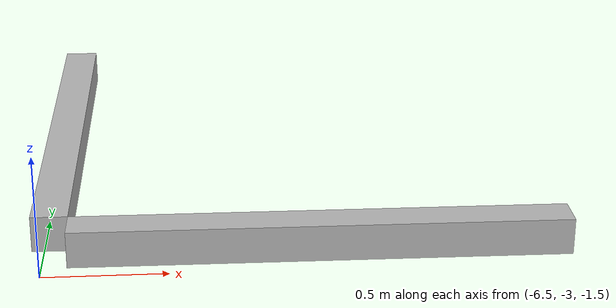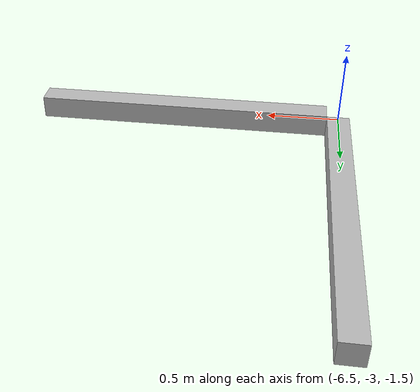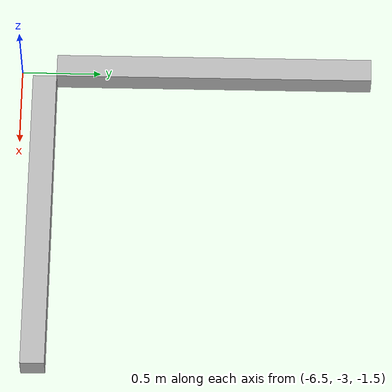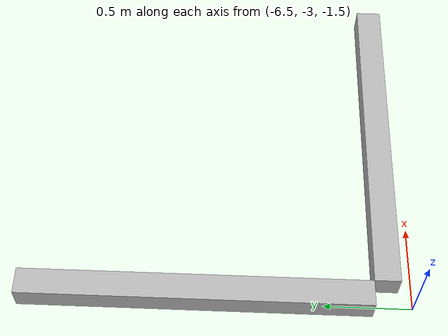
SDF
<sdf version="1.7">
 <world name="default">
  <model name="orthogonal_747_2.000.15_TS">
   <static>1</static>
   <link name="x_link_0_1_0">
    <inertial>
     <mass>1</mass>
     <inertia>
      <ixx>0.166667</ixx>
      <ixy>0</ixy>
      <ixz>0</ixz>
      <iyy>0.166667</iyy>
      <iyz>0</iyz>
      <izz>0.166667</izz>
     </inertia>
    </inertial>
    <pose>1.075 2.15 1.075 0 -0 0</pose>
    <visual name="visual_0">
     <laser_retro>162</laser_retro>
     <geometry><box><size>2 1e-06 0.15</size></box></geometry>
     <material>
      <script><name>Gazebo/Grey</name><uri>file://media/materials/scripts/gazebo.material</uri></script>
      <shader type="pixel"><normal_map>__default__</normal_map></shader>
      <ambient>0.678 0.498 0.659 1</ambient>
      <diffuse>0.7 0.7 0.7 1</diffuse>
      <specular>0.01 0.01 0.01 1</specular>
      <emissive>0 0 0 1</emissive>
     </material>
     <pose>0 -0.075 0 0 -0 0</pose>
     <transparency>1</transparency>
    </visual>
    <visual name="visual_1">
     <laser_retro>163</laser_retro>
     <geometry><box><size>2 1e-06 0.15</size></box></geometry>
     <material>
      <script><name>Gazebo/Grey</name><uri>file://media/materials/scripts/gazebo.material</uri></script>
      <shader type="pixel"><normal_map>__default__</normal_map></shader>
      <ambient>0.447 0.624 0.812 1</ambient>
      <diffuse>0.7 0.7 0.7 1</diffuse>
      <specular>0.01 0.01 0.01 1</specular>
      <emissive>0 0 0 1</emissive>
     </material>
     <pose>0 0.075 0 0 -0 0</pose>
     <transparency>1</transparency>
    </visual>
    <visual name="visual_2">
     <laser_retro>164</laser_retro>
     <geometry><box><size>2 0.15 1e-06</size></box></geometry>
     <material>
      <script><name>Gazebo/Grey</name><uri>file://media/materials/scripts/gazebo.material</uri></script>
      <shader type="pixel"><normal_map>__default__</normal_map></shader>
      <ambient>0.988 0.686 0.243 1</ambient>
      <diffuse>0.7 0.7 0.7 1</diffuse>
      <specular>0.01 0.01 0.01 1</specular>
      <emissive>0 0 0 1</emissive>
     </material>
     <pose>0 0 -0.075 0 -0 0</pose>
     <transparency>1</transparency>
    </visual>
    <visual name="visual_3">
     <laser_retro>165</laser_retro>
     <geometry><box><size>1e-06 0.15 0.15</size></box></geometry>
     <material>
      <script><name>Gazebo/Grey</name><uri>file://media/materials/scripts/gazebo.material</uri></script>
      <shader type="pixel"><normal_map>__default__</normal_map></shader>
      <ambient>0.988 0.914 0.31 1</ambient>
      <diffuse>0.7 0.7 0.7 1</diffuse>
      <specular>0.01 0.01 0.01 1</specular>
      <emissive>0 0 0 1</emissive>
     </material>
     <pose>1 0 0 0 -0 0</pose>
     <transparency>1</transparency>
    </visual>
    <visual name="visual_4">
     <laser_retro>166</laser_retro>
     <geometry><box><size>2 0.15 1e-06</size></box></geometry>
     <material>
      <script><name>Gazebo/Grey</name><uri>file://media/materials/scripts/gazebo.material</uri></script>
      <shader type="pixel"><normal_map>__default__</normal_map></shader>
      <ambient>0.937 0.161 0.161 1</ambient>
      <diffuse>0.7 0.7 0.7 1</diffuse>
      <specular>0.01 0.01 0.01 1</specular>
      <emissive>0 0 0 1</emissive>
     </material>
     <pose>0 0 0.075 0 -0 0</pose>
     <transparency>1</transparency>
    </visual>
    <visual name="visual_5">
     <laser_retro>167</laser_retro>
     <geometry><box><size>1e-06 0.15 0.15</size></box></geometry>
     <material>
      <script><name>Gazebo/Grey</name><uri>file://media/materials/scripts/gazebo.material</uri></script>
      <shader type="pixel"><normal_map>__default__</normal_map></shader>
      <ambient>0.541 0.886 0.204 1</ambient>
      <diffuse>0.7 0.7 0.7 1</diffuse>
      <specular>0.01 0.01 0.01 1</specular>
      <emissive>0 0 0 1</emissive>
     </material>
     <pose>-1 0 0 0 -0 0</pose>
     <transparency>1</transparency>
    </visual>
    <visual name="visual_texture">
     <geometry><box><size>1.9998 0.149985 0.149985</size></box></geometry>
     <material>
      <script>
       <uri>model://BASE_MODELS/simple_block_v2_textured/materials/scripts</uri>
       <uri>model://BASE_MODELS/simple_block_v2_textured/materials/textures</uri>
       <name>metal</name>
      </script>
     </material>
     <laser_retro>168</laser_retro>
    </visual>
    <collision name="collision">
     <geometry><box><size>2 0.15 0.15</size></box></geometry>
     <surface>
      <friction>
       <ode><mu>1</mu><mu2>1</mu2><fdir1>0 0 0</fdir1><slip1>0</slip1><slip2>0</slip2></ode>
       <torsional>
        <coefficient>1</coefficient>
        <patch_radius>0</patch_radius>
        <surface_radius>0</surface_radius>
        <use_patch_radius>1</use_patch_radius>
        <ode><slip>0</slip></ode>
       </torsional>
      </friction>
      <bounce><restitution_coefficient>0</restitution_coefficient><threshold>1e+06</threshold></bounce>
      <contact>
       <collide_without_contact>0</collide_without_contact>
       <collide_without_contact_bitmask>1</collide_without_contact_bitmask>
       <collide_bitmask>1</collide_bitmask>
       <ode>
        <soft_cfm>0</soft_cfm>
        <soft_erp>0.2</soft_erp>
        <kp>1e+13</kp>
        <kd>1</kd>
        <max_vel>0.01</max_vel>
        <min_depth>0</min_depth>
       </ode>
       <bullet>
        <split_impulse>1</split_impulse>
        <split_impulse_penetration_threshold>-0.01</split_impulse_penetration_threshold>
        <soft_cfm>0</soft_cfm>
        <soft_erp>0.2</soft_erp>
        <kp>1e+13</kp>
        <kd>1</kd>
       </bullet>
      </contact>
     </surface>
    </collision>
   </link>
   <link name="y_link_0_1_0">
    <inertial>
     <mass>1</mass>
     <inertia>
      <ixx>0.166667</ixx>
      <ixy>0</ixy>
      <ixz>0</ixz>
      <iyy>0.166667</iyy>
      <iyz>0</iyz>
      <izz>0.166667</izz>
     </inertia>
    </inertial>
    <pose>0 3.225 1.075 0 -0 0</pose>
    <visual name="visual_0">
     <laser_retro>169</laser_retro>
     <geometry><box><size>0.15 1e-06 0.15</size></box></geometry>
     <material>
      <script><name>Gazebo/Grey</name><uri>file://media/materials/scripts/gazebo.material</uri></script>
      <shader type="pixel"><normal_map>__default__</normal_map></shader>
      <ambient>0.678 0.498 0.659 1</ambient>
      <diffuse>0.7 0.7 0.7 1</diffuse>
      <specular>0.01 0.01 0.01 1</specular>
      <emissive>0 0 0 1</emissive>
     </material>
     <pose>0 -1 0 0 -0 0</pose>
     <transparency>1</transparency>
    </visual>
    <visual name="visual_1">
     <laser_retro>170</laser_retro>
     <geometry><box><size>0.15 1e-06 0.15</size></box></geometry>
     <material>
      <script><name>Gazebo/Grey</name><uri>file://media/materials/scripts/gazebo.material</uri></script>
      <shader type="pixel"><normal_map>__default__</normal_map></shader>
      <ambient>0.447 0.624 0.812 1</ambient>
      <diffuse>0.7 0.7 0.7 1</diffuse>
      <specular>0.01 0.01 0.01 1</specular>
      <emissive>0 0 0 1</emissive>
     </material>
     <pose>0 1 0 0 -0 0</pose>
     <transparency>1</transparency>
    </visual>
    <visual name="visual_2">
     <laser_retro>171</laser_retro>
     <geometry><box><size>0.15 2 1e-06</size></box></geometry>
     <material>
      <script><name>Gazebo/Grey</name><uri>file://media/materials/scripts/gazebo.material</uri></script>
      <shader type="pixel"><normal_map>__default__</normal_map></shader>
      <ambient>0.988 0.686 0.243 1</ambient>
      <diffuse>0.7 0.7 0.7 1</diffuse>
      <specular>0.01 0.01 0.01 1</specular>
      <emissive>0 0 0 1</emissive>
     </material>
     <pose>0 0 -0.075 0 -0 0</pose>
     <transparency>1</transparency>
    </visual>
    <visual name="visual_3">
     <laser_retro>172</laser_retro>
     <geometry><box><size>1e-06 2 0.15</size></box></geometry>
     <material>
      <script><name>Gazebo/Grey</name><uri>file://media/materials/scripts/gazebo.material</uri></script>
      <shader type="pixel"><normal_map>__default__</normal_map></shader>
      <ambient>0.988 0.914 0.31 1</ambient>
      <diffuse>0.7 0.7 0.7 1</diffuse>
      <specular>0.01 0.01 0.01 1</specular>
      <emissive>0 0 0 1</emissive>
     </material>
     <pose>0.075 0 0 0 -0 0</pose>
     <transparency>1</transparency>
    </visual>
    <visual name="visual_4">
     <laser_retro>173</laser_retro>
     <geometry><box><size>0.15 2 1e-06</size></box></geometry>
     <material>
      <script><name>Gazebo/Grey</name><uri>file://media/materials/scripts/gazebo.material</uri></script>
      <shader type="pixel"><normal_map>__default__</normal_map></shader>
      <ambient>0.937 0.161 0.161 1</ambient>
      <diffuse>0.7 0.7 0.7 1</diffuse>
      <specular>0.01 0.01 0.01 1</specular>
      <emissive>0 0 0 1</emissive>
     </material>
     <pose>0 0 0.075 0 -0 0</pose>
     <transparency>1</transparency>
    </visual>
    <visual name="visual_5">
     <laser_retro>174</laser_retro>
     <geometry><box><size>1e-06 2 0.15</size></box></geometry>
     <material>
      <script><name>Gazebo/Grey</name><uri>file://media/materials/scripts/gazebo.material</uri></script>
      <shader type="pixel"><normal_map>__default__</normal_map></shader>
      <ambient>0.541 0.886 0.204 1</ambient>
      <diffuse>0.7 0.7 0.7 1</diffuse>
      <specular>0.01 0.01 0.01 1</specular>
      <emissive>0 0 0 1</emissive>
     </material>
     <pose>-0.075 0 0 0 -0 0</pose>
     <transparency>1</transparency>
    </visual>
    <visual name="visual_texture">
     <geometry><box><size>0.149985 1.9998 0.149985</size></box></geometry>
     <material>
      <script>
       <uri>model://BASE_MODELS/simple_block_v2_textured/materials/scripts</uri>
       <uri>model://BASE_MODELS/simple_block_v2_textured/materials/textures</uri>
       <name>metal</name>
      </script>
     </material>
     <laser_retro>175</laser_retro>
    </visual>
    <collision name="collision">
     <geometry><box><size>0.15 2 0.15</size></box></geometry>
     <surface>
      <friction>
       <ode><mu>1</mu><mu2>1</mu2><fdir1>0 0 0</fdir1><slip1>0</slip1><slip2>0</slip2></ode>
       <torsional>
        <coefficient>1</coefficient>
        <patch_radius>0</patch_radius>
        <surface_radius>0</surface_radius>
        <use_patch_radius>1</use_patch_radius>
        <ode><slip>0</slip></ode>
       </torsional>
      </friction>
      <bounce><restitution_coefficient>0</restitution_coefficient><threshold>1e+06</threshold></bounce>
      <contact>
       <collide_without_contact>0</collide_without_contact>
       <collide_without_contact_bitmask>1</collide_without_contact_bitmask>
       <collide_bitmask>1</collide_bitmask>
       <ode>
        <soft_cfm>0</soft_cfm>
        <soft_erp>0.2</soft_erp>
        <kp>1e+13</kp>
        <kd>1</kd>
        <max_vel>0.01</max_vel>
        <min_depth>0</min_depth>
       </ode>
       <bullet>
        <split_impulse>1</split_impulse>
        <split_impulse_penetration_threshold>-0.01</split_impulse_penetration_threshold>
        <soft_cfm>0</soft_cfm>
        <soft_erp>0.2</soft_erp>
        <kp>1e+13</kp>
        <kd>1</kd>
       </bullet>
      </contact>
     </surface>
    </collision>
   </link>
   <pose>-6.47624 -5 -2.5 0 -0 0</pose>
  </model>
 </world>
</sdf>
